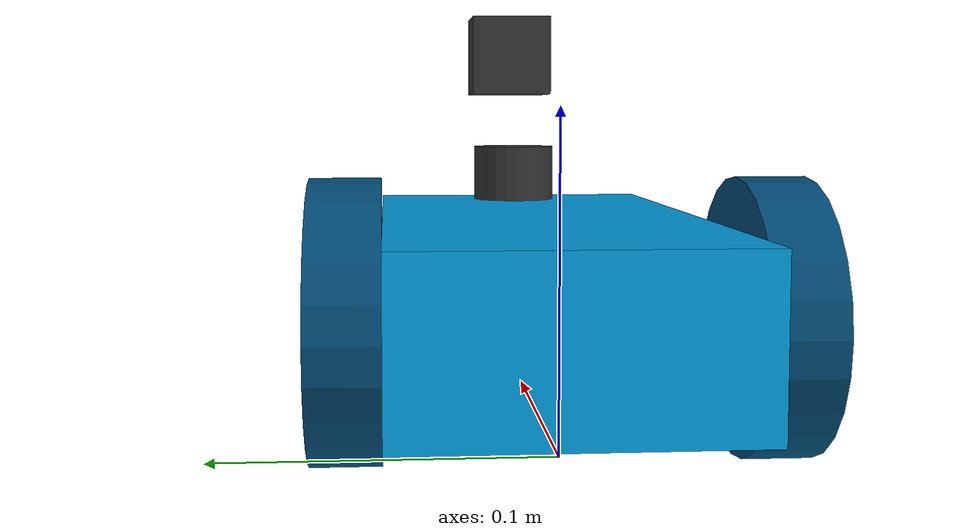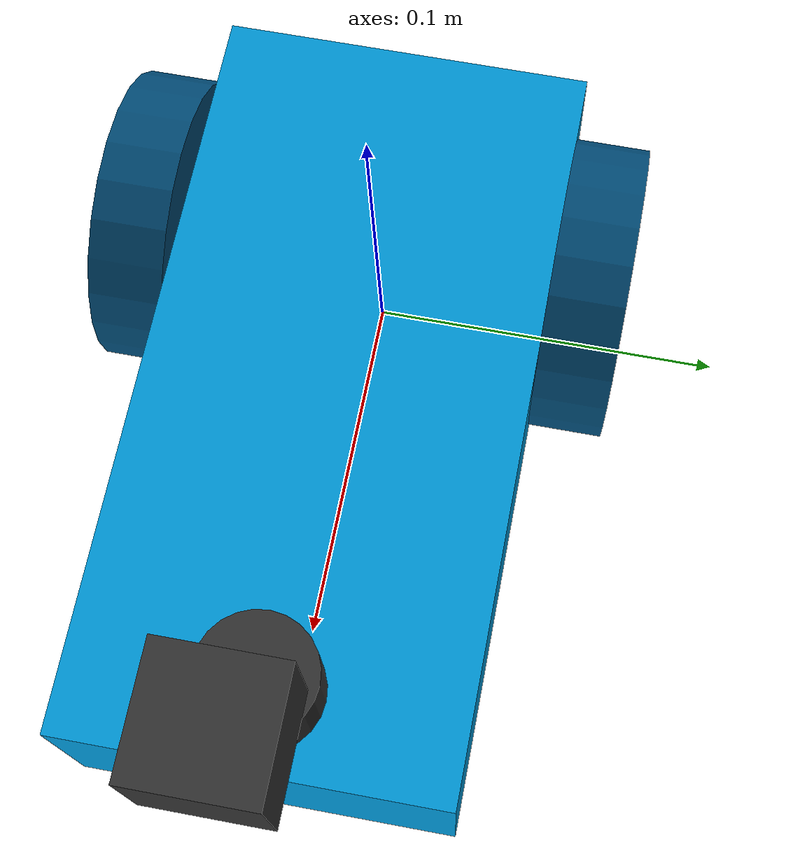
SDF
<?xml version="1.0" ?>
<sdf version="1.9">
  <model name="simple_robot" canonical_link='chassis'>
    <pose>0 0 0 0 0 0</pose>

    <!-- ====================== CHASSIS ====================== -->
    <link name='chassis'>
      <pose relative_to='__model__'>0.05 0 0.04 0 0 0</pose>
      <inertial>
        <mass>1</mass>
        <inertia>
          <ixx>0.001191615</ixx>
          <ixy>0</ixy>
          <ixz>0</ixz>
          <iyy>0.004051490</iyy>
          <iyz>0</iyz>
          <izz>0.004766458</izz>
        </inertia>
      </inertial>
      <visual name='visual'>
        <geometry>
          <box>
            <size>0.2 0.1 0.05</size>
          </box>
        </geometry>
        <material>
          <ambient>0.0 0.612 0.867 1</ambient>
          <diffuse>0.0 0.612 0.867 1</diffuse>
          <specular>0.0 0.612 0.867 1</specular>
        </material>
      </visual>
      <collision name='collision'>
        <geometry>
          <box>
            <size>0.2 0.1 0.05</size>
          </box>
        </geometry>
      </collision>
    </link>

    <!-- ====================== LEFT WHEEL ====================== -->
    <link name='left_wheel'>
      <pose relative_to="chassis">-0.05 0.06 0 -1.5707 0 0</pose>
      <inertial>
        <mass>0.2</mass>
        <inertia>
          <ixx>0.000800</ixx>
          <ixy>0</ixy>
          <ixz>0</ixz>
          <iyy>0.000433</iyy>
          <iyz>0</iyz>
          <izz>0.000433</izz>
        </inertia>
      </inertial>
      <visual name='visual'>
        <geometry>
          <cylinder>
            <radius>0.04</radius>
            <length>0.02</length>
          </cylinder>
        </geometry>
        <material>
          <ambient>0.0 0.29 0.46 1</ambient>
          <diffuse>0.0 0.29 0.46 1</diffuse>
          <specular>0.0 0.0 0.0 1</specular>
        </material>
      </visual>
      <collision name='collision'>
        <geometry>
          <cylinder>
            <radius>0.04</radius>
            <length>0.02</length>
          </cylinder>
        </geometry>
      </collision>
    </link>

    <!-- ====================== RIGHT WHEEL ====================== -->
    <link name='right_wheel'>
      <pose relative_to="chassis">-0.05 -0.06 0 -1.5707 0 0</pose>
      <inertial>
        <mass>0.2</mass>
        <inertia>
          <ixx>0.000800</ixx>
          <ixy>0</ixy>
          <ixz>0</ixz>
          <iyy>0.000433</iyy>
          <iyz>0</iyz>
          <izz>0.000433</izz>
        </inertia>
      </inertial>
      <visual name='visual'>
        <geometry>
          <cylinder>
            <radius>0.04</radius>
            <length>0.02</length>
          </cylinder>
        </geometry>
        <material>
          <ambient>0.0 0.29 0.46 1</ambient>
          <diffuse>0.0 0.29 0.46 1</diffuse>
          <specular>0.0 0.0 0.0 1</specular>
        </material>
      </visual>
      <collision name='collision'>
        <geometry>
          <cylinder>
            <radius>0.04</radius>
            <length>0.02</length>
          </cylinder>
        </geometry>
      </collision>
    </link>

    <!-- ====================== CASTER WHEEL ====================== -->
    <frame name="caster_frame" attached_to='chassis'>
      <pose>0.08 0 -0.02 0 0 0</pose>
    </frame>

    <link name='caster'>
      <pose relative_to='caster_frame'/>
      <inertial>
        <mass>0.1</mass>
        <inertia>
          <ixx>0.00016</ixx>
          <ixy>0</ixy>
          <ixz>0</ixz>
          <iyy>0.00016</iyy>
          <iyz>0</iyz>
          <izz>0.00016</izz>
        </inertia>
      </inertial>
      <visual name='visual'>
        <geometry><sphere><radius>0.02</radius></sphere></geometry>
        <material>
          <ambient>0.0 0.29 0.46 1</ambient>
          <diffuse>0.0 0.29 0.46 1</diffuse>
        </material>
      </visual>
      <collision name='collision'>
        <geometry><sphere><radius>0.02</radius></sphere></geometry>
      </collision>
    </link>

    <!-- ====================== CAMERA LINK ====================== -->
    <link name="camera_link">
      <pose relative_to="chassis">0.1 0 0.08 0 0 0</pose>
      <inertial>
        <mass>0.01</mass>
        <inertia>
          <ixx>1e-6</ixx><iyy>1e-6</iyy><izz>1e-6</izz>
          <ixy>0</ixy><ixz>0</ixz><iyz>0</iyz>
        </inertia>
      </inertial>

      <!-- Camera visual (optional) -->
      <visual name="camera_visual">
        <geometry><box><size>0.03 0.03 0.03</size></box></geometry>
        <material>
          <ambient>0 0 0 1</ambient>
          <diffuse>0.2 0.2 0.2 1</diffuse>
        </material>
      </visual>

      <!-- Camera sensor -->
<sensor name="camera_sensor" type="camera">
  <always_on>true</always_on>
  <update_rate>30</update_rate>
  <visualize>true</visualize>

  <camera>
    <horizontal_fov>1.047</horizontal_fov>
    <image>
      <width>640</width>
      <height>480</height>
      <format>RGB_INT8</format>
    </image>
    <clip>
      <near>0.1</near>
      <far>100</far>
    </clip>
    <frame_id>camera_link</frame_id>
  </camera>

  <topic>/camera/image_raw</topic>
</sensor>

</link>

<!-- ====================== LIDAR LINK ====================== -->
<link name="lidar_link">
  <pose relative_to="chassis">0.08 0 0.035 0 0 0</pose>

  <inertial>
    <mass>0.01</mass>
    <inertia>
      <ixx>1e-6</ixx><iyy>1e-6</iyy><izz>1e-6</izz>
      <ixy>0</ixy><ixz>0</ixz><iyz>0</iyz>
    </inertia>
  </inertial>

  <visual name="lidar_visual">
    <geometry>
      <cylinder>
        <radius>0.015</radius>
        <length>0.02</length>
      </cylinder>
    </geometry>
    <material>
      <ambient>0.2 0.2 0.2 1</ambient>
      <diffuse>0.2 0.2 0.2 1</diffuse>
    </material>
  </visual>

  <sensor name="lidar_sensor" type="gpu_lidar">
  <always_on>true</always_on>
  <update_rate>15</update_rate>
  <visualize>true</visualize>
  <topic>/lidar/scan</topic>

  <lidar>
    <scan>
      <horizontal>
        <samples>720</samples>
        <resolution>1</resolution>
        <min_angle>-3.14159</min_angle>
        <max_angle>3.14159</max_angle>
      </horizontal>
      <vertical>
        <samples>1</samples>
        <resolution>1</resolution>
        <min_angle>0</min_angle>
        <max_angle>0</max_angle>
      </vertical>
    </scan>
    <range>
      <!-- MUST be > 0 -->
      <min>0.1</min>
      <max>6.0</max>
      <resolution>0.01</resolution>
    </range>
  </lidar>

  <frame_id>lidar_link</frame_id>
</sensor>

</link>

<joint name="lidar_joint" type="fixed">
  <parent>chassis</parent>
  <child>lidar_link</child>
</joint>

    <!-- ====================== JOINTS ====================== -->
    <joint name='left_wheel_joint' type='revolute'>
      <pose relative_to='left_wheel'/>
      <parent>chassis</parent>
      <child>left_wheel</child>
      <axis><xyz expressed_in='__model__'>0 1 0</xyz></axis>
    </joint>

    <joint name='right_wheel_joint' type='revolute'>
      <pose relative_to='right_wheel'/>
      <parent>chassis</parent>
      <child>right_wheel</child>
      <axis><xyz expressed_in='__model__'>0 1 0</xyz></axis>
    </joint>

    <joint name='caster_wheel' type='ball'>
      <parent>chassis</parent>
      <child>caster</child>
    </joint>

    <!-- Camera fixed joint -->
    <joint name="camera_joint" type="fixed">
      <parent>chassis</parent>
      <child>camera_link</child>
    </joint>

    <!-- ====================== DIFF DRIVE PLUGIN ====================== -->
    <plugin filename="libgz-sim-diff-drive-system.so"
      name="gz::sim::systems::DiffDrive">
    <left_joint>left_wheel_joint</left_joint>
    <right_joint>right_wheel_joint</right_joint>
    <wheel_separation>0.12</wheel_separation>
    <wheel_radius>0.04</wheel_radius>
    <odom_publish_frequency>1</odom_publish_frequency>
    <topic>/cmd_vel</topic>           <!-- updated -->
    <odom_topic>/odom</odom_topic>
    </plugin>

  </model>
</sdf>
